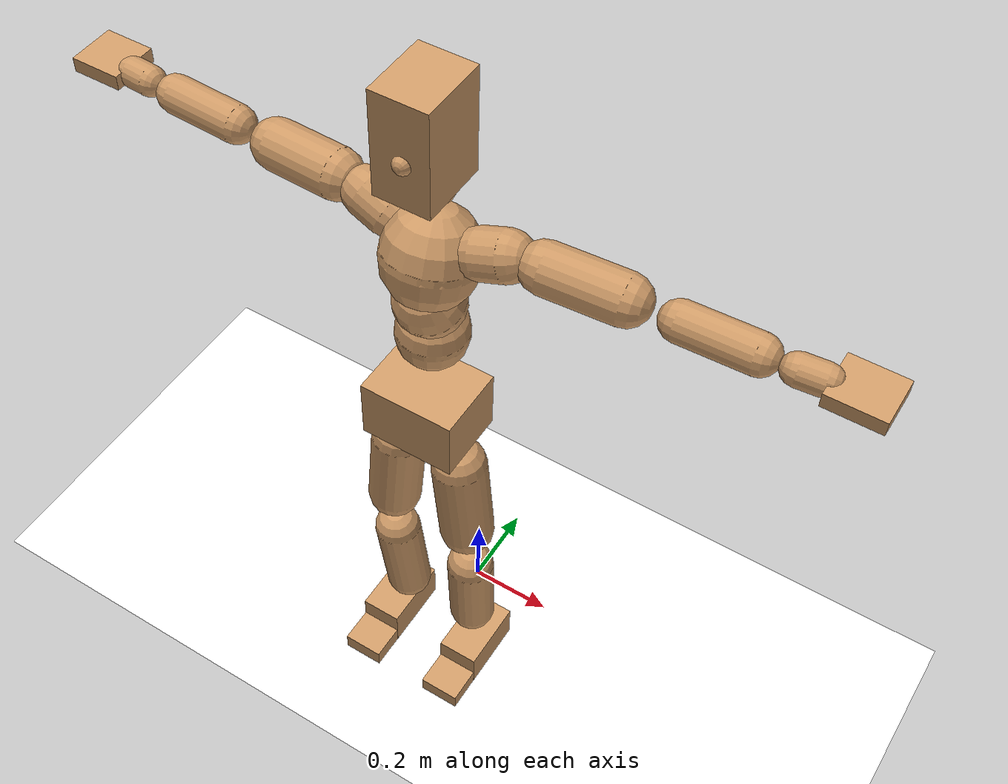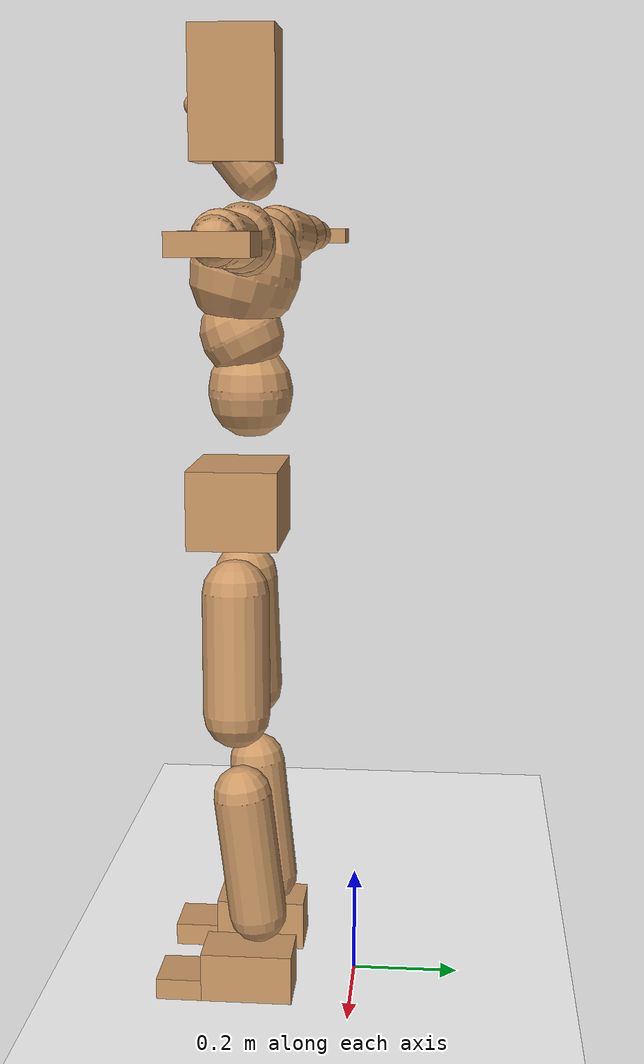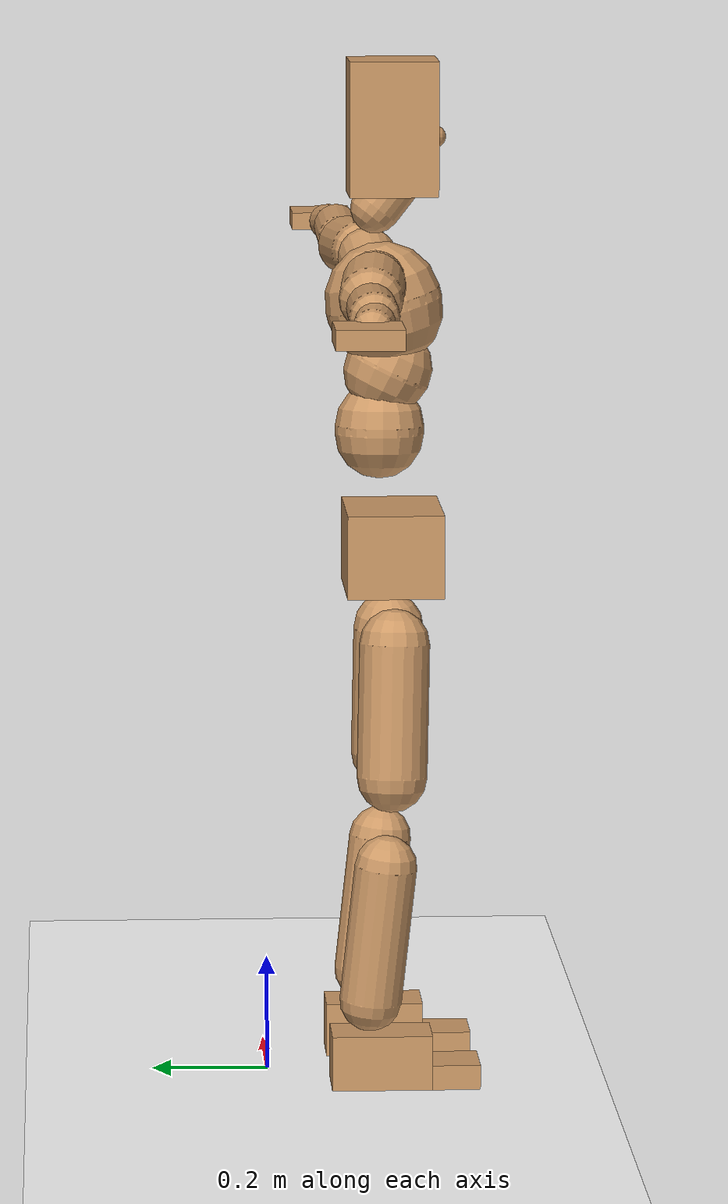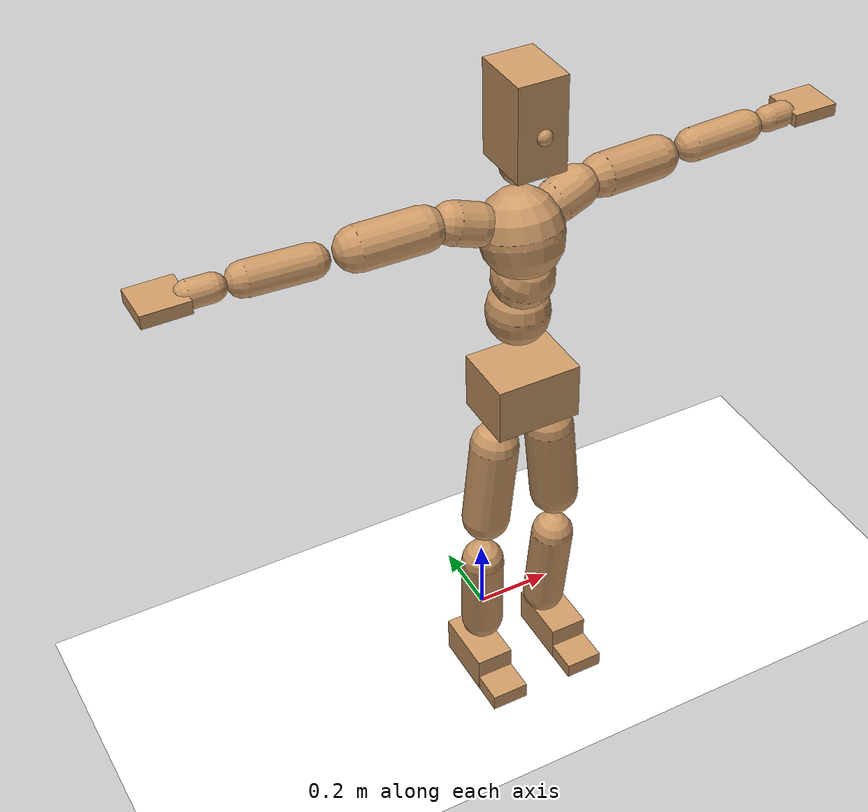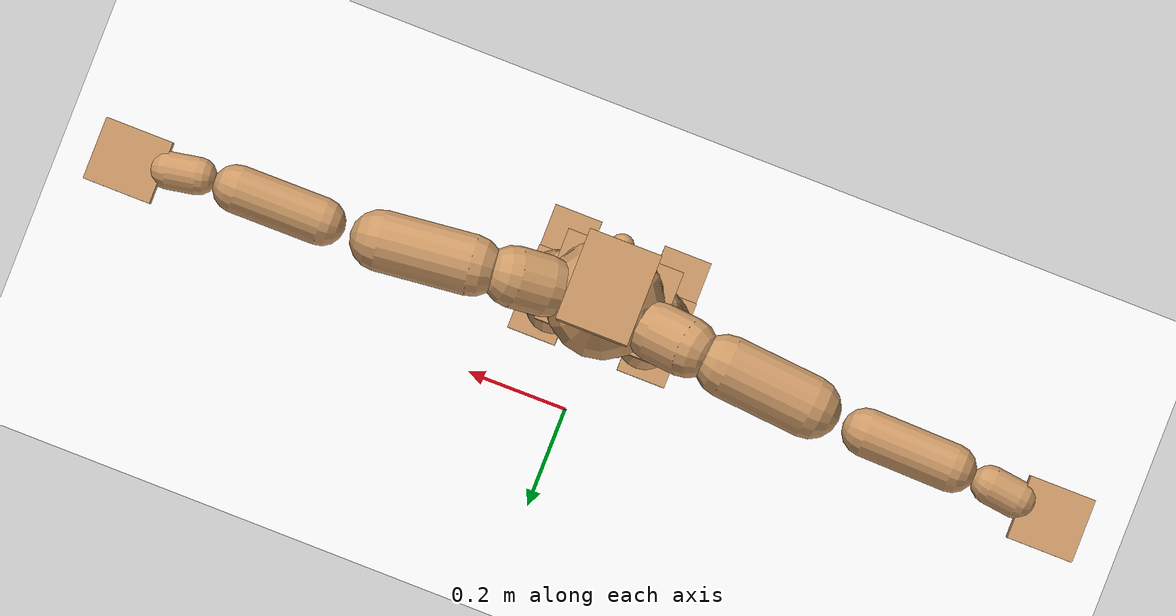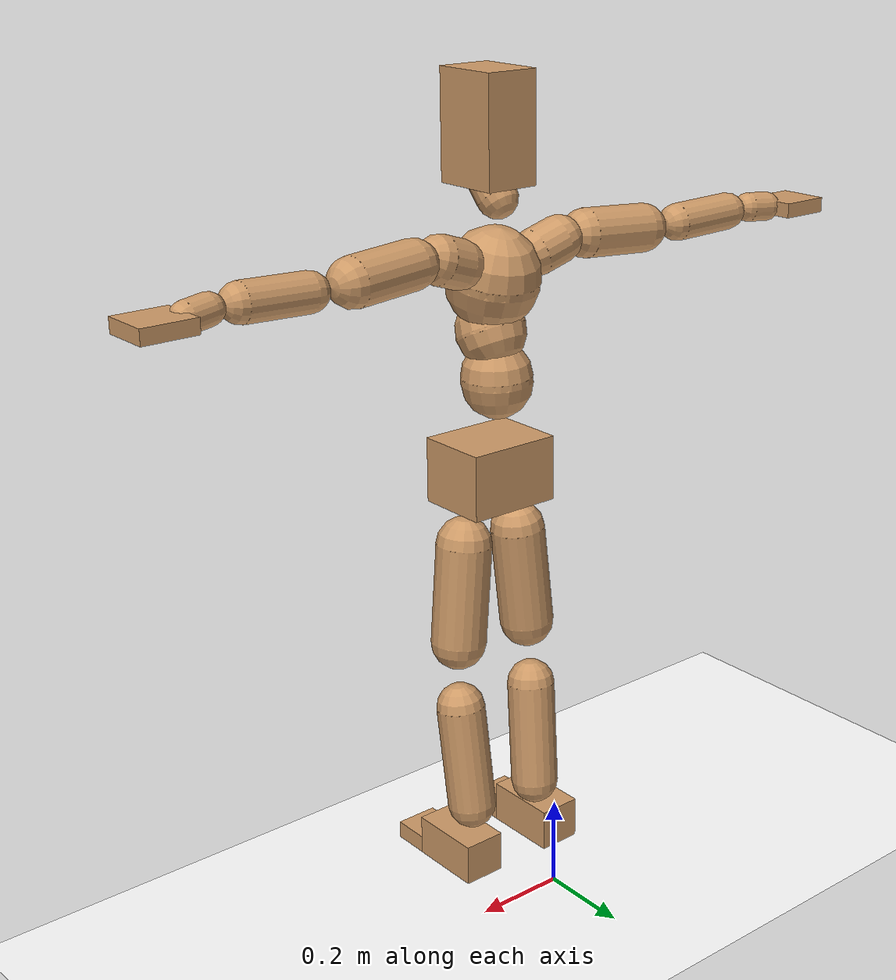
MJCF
<mujoco model="humanoid">
  <option integrator="implicitfast" />

  <visual>
    <global offwidth="1280" offheight="960" />
    <headlight active="1" ambient="0.34 0.34 0.34" diffuse="0.5 0.5 0.5" />
  </visual>

  <default>
    <joint damping="2" stiffness="2" armature="0.01" limited="true" solimplimit="0 .99 .01" />
    <geom condim="1" friction="0.7 0.005 0.0001" solimp=".99 .99 .003" solref="0.015 1" margin="0.001" rgba="0.8 0.6 .4 1" />
    <default class="smplcontact">
      <geom condim="3" friction="1. 0.005 0.0001" solref="0.015 1" solimp="0.98 0.98 0.001" priority="1" />
    </default>
    <default class="stiff_medium">
      <joint stiffness="10" />
    </default>
    <default class="stiff_medium_higher">
      <joint stiffness="50" />
    </default>
    <default class="stiff_high">
      <joint stiffness="100" />
    </default>
  </default>

  <asset>
    <texture type="skybox" builtin="gradient" rgb1="0.99 0.99 0.99" rgb2="0.608 0.828 0.892" width="100" />
    <texture builtin="flat" height="1278" mark="cross" markrgb="1 1 1" name="texgeom" random="0.01" rgb1="0.8 0.6 0.4" rgb2="0.8 0.6 0.4" type="cube" width="127" />
    <texture name="texplane" type="2d" builtin="checker" markrgb="1 1 1" rgb1="0.756 0.772 0.76" rgb2="0.6 0.6 0.6" width="100" height="100" />
    <material name="MatPlane" reflectance="0.5" texture="texplane" texrepeat="1 1" texuniform="true" />
    <material name="geom" texture="texgeom" texuniform="true" />
  </asset>

  <worldbody>
    <light name="tracking_light" pos="0 0 7" dir="0 0 -1" directional="true" cutoff="100" exponent="1" diffuse="1 1 1" specular="0.1 0.1 0.1" mode="trackcom" />
    <camera name="back" pos="0 3 2.4" xyaxes="-1 0 0 0 -1 2" mode="trackcom" />
    <camera name="side" pos="-3 0 2.4" xyaxes="0 -1 0 1 0 2" mode="trackcom" />
    <camera name="front_side" pos="-2.8 -2.8 0.8" xyaxes="0.5 -0.5 0 0.1 0.1 1" mode="trackcom" />
    <geom condim="3" name="floor" pos="0 0 0" rgba="1 1 1 1" size="100 100 .2" type="plane" material="MatPlane" />
    <body name="Pelvis" pos="-0.0018 -0.2233 0.9367" euler="90 0 0">
      <site name="Pelvis" size="0.01" />
      <freejoint name="Pelvis" />
      <geom type="box" pos="-0.0000 -0.0121 -0.0055" size="0.1069 0.0722 0.083" quat="1.0000 0.0000 0.0000 0.0000" density="3165.830099" name="Pelvis" />
      <body name="L_Hip" pos="0.0695 -0.0914 -0.0068">
        <joint name="L_Hip_x" type="hinge" pos="0 0 0" axis="1 0 0" stiffness="10.0" range="-160.0 22.92" class="stiff_medium" damping="15.0" armature="0.01"/>
        <joint name="L_Hip_y" type="hinge" pos="0 0 0" axis="0 1 0" stiffness="10.0" range="-70.0 70.0" class="stiff_medium" damping="10.000000000000007" armature="0.010000000000000016"/>
        <joint name="L_Hip_z" type="hinge" pos="0 0 0" axis="0 0 1" stiffness="10.0" range="-28.65 90.0" class="stiff_medium" damping="9.999999999999996" armature="0.009999999999999995"/>
        <geom type="capsule" density="2040.816327" fromto="0.0069 -0.075 -0.0009 0.0274 -0.3002 -0.0036" size="0.0615" name="L_Hip" />
        <body name="L_Knee" pos="0.0343 -0.3752 -0.0045">
          <joint name="L_Knee_x" type="hinge" pos="0 0 0" axis="1 0 0" range="-5.16 171.89" damping="8.000000000000002" armature="0.010000000000000005" stiffness="2.0"/>
          <joint name="L_Knee_y" type="hinge" pos="0 0 0" axis="0 1 0" range="-4.58 6.88" damping="8.0" armature="0.010000000000000002" stiffness="2.0"/>
          <joint name="L_Knee_z" type="hinge" pos="0 0 0" axis="0 0 1" range="-6.88 4.58" damping="7.999999999999994" armature="0.009999999999999985" stiffness="2.0"/>
          <geom type="capsule" density="1234.567901" fromto="-0.0027 -0.0796 -0.0087 -0.0109 -0.3184 -0.035" size="0.0541" name="L_Knee" />
          <body name="L_Ankle" pos="-0.0136 -0.398 -0.0437">
            <joint name="L_Ankle_x" type="hinge" pos="0 0 0" axis="1 0 0" range="-45.84 45.84" class="stiff_medium" damping="6.000000000000059" armature="0.010000000000000198" stiffness="10.0"/>
            <joint name="L_Ankle_y" type="hinge" pos="0 0 0" axis="0 1 0" range="-74.48 22.92" class="stiff_medium" damping="3.0000000000000013" armature="0.010000000000000009" stiffness="10.0"/>
            <joint name="L_Ankle_z" type="hinge" pos="0 0 0" axis="0 0 1" range="-4.58 4.58" class="stiff_medium" damping="5.999999999999993" armature="0.009999999999999978" stiffness="10.0"/>
            <geom type="box" pos="0.0233 -0.0239 0.0242" size="0.0483 0.0464 0.085" quat="1.0000 0.0000 0.0000 0.0000" density="449.071558" name="L_Ankle" class="smplcontact" />
            <body name="L_Toe" pos="0.0264 -0.0558 0.1193">
              <joint name="L_Toe_x" type="hinge" pos="0 0 0" axis="1 0 0" range="-91.67 22.92" armature="0.009999999999999842" damping="1.9999999999999842" stiffness="2.0"/>
              <joint name="L_Toe_y" type="hinge" pos="0 0 0" axis="0 1 0" range="-4.58 4.58" armature="0.009999999999999976" damping="1.9999999999999976" stiffness="2.0"/>
              <joint name="L_Toe_z" type="hinge" pos="0 0 0" axis="0 0 1" range="-4.58 4.58" armature="0.010000000000000018" damping="2.0000000000000018" stiffness="2.0"/>
              <geom type="box" pos="-0.003 0.0055 0.0248" size="0.0478 0.02 0.0496" quat="1.0000 0.0000 0.0000 0.0000" density="423.206892" name="L_Toe" class="smplcontact" />
            </body>
          </body>
        </body>
      </body>
      <body name="R_Hip" pos="-0.0677 -0.0905 -0.0043">
        <joint name="R_Hip_x" type="hinge" pos="0 0 0" axis="1 0 0" stiffness="10.0" range="-160.0 22.92" class="stiff_medium" damping="15.0" armature="0.01"/>
        <joint name="R_Hip_y" type="hinge" pos="0 0 0" axis="0 1 0" stiffness="10.0" range="-70.0 70.0" class="stiff_medium" damping="10.000000000000007" armature="0.010000000000000016"/>
        <joint name="R_Hip_z" type="hinge" pos="0 0 0" axis="0 0 1" stiffness="10.0" range="-90.0 28.65" class="stiff_medium" damping="9.999999999999996" armature="0.009999999999999995"/>
        <geom type="capsule" density="2040.816327" fromto="-0.0077 -0.0765 -0.0018 -0.0306 -0.3061 -0.0071" size="0.0606" name="R_Hip" />
        <body name="R_Knee" pos="-0.0383 -0.3826 -0.0089">
          <joint name="R_Knee_x" type="hinge" pos="0 0 0" axis="1 0 0" range="-5.16 171.89" damping="8.000000000000002" armature="0.010000000000000005" stiffness="2.0"/>
          <joint name="R_Knee_y" type="hinge" pos="0 0 0" axis="0 1 0" range="-6.88 4.58" damping="8.0" armature="0.010000000000000002" stiffness="2.0"/>
          <joint name="R_Knee_z" type="hinge" pos="0 0 0" axis="0 0 1" range="-4.58 6.88" damping="7.999999999999994" armature="0.009999999999999985" stiffness="2.0"/>
          <geom type="capsule" density="1234.567901" fromto="0.0032 -0.0797 -0.0085 0.0126 -0.3187 -0.0338" size="0.0541" name="R_Knee" />
          <body name="R_Ankle" pos="0.0158 -0.3984 -0.0423">
            <joint name="R_Ankle_x" type="hinge" pos="0 0 0" axis="1 0 0" range="-45.84 45.84" class="stiff_medium" damping="6.000000000000059" armature="0.010000000000000198" stiffness="10.0"/>
            <joint name="R_Ankle_y" type="hinge" pos="0 0 0" axis="0 1 0" range="-22.92 74.48" class="stiff_medium" damping="3.0000000000000013" armature="0.010000000000000009" stiffness="10.0"/>
            <joint name="R_Ankle_z" type="hinge" pos="0 0 0" axis="0 0 1" range="-4.58 4.58" class="stiff_medium" damping="5.999999999999993" armature="0.009999999999999978" stiffness="10.0"/>
            <geom type="box" pos="-0.0212 -0.0174 0.0256" size="0.0483 0.0478 0.0865" quat="1.0000 0.0000 0.0000 0.0000" density="434.700981" name="R_Ankle" class="smplcontact" />
            <body name="R_Toe" pos="-0.0254 -0.0481 0.1233">
              <joint name="R_Toe_x" type="hinge" pos="0 0 0" axis="1 0 0" range="-91.67 22.92" armature="0.009999999999999842" damping="1.9999999999999842" stiffness="2.0"/>
              <joint name="R_Toe_y" type="hinge" pos="0 0 0" axis="0 1 0" range="-4.58 4.58" armature="0.009999999999999976" damping="1.9999999999999976" stiffness="2.0"/>
              <joint name="R_Toe_z" type="hinge" pos="0 0 0" axis="0 0 1" range="-4.58 4.58" armature="0.010000000000000018" damping="2.0000000000000018" stiffness="2.0"/>
              <geom type="box" pos="0.0042 0.0045 0.0227" size="0.0479 0.0216 0.0493" quat="1.0000 0.0000 0.0000 0.0000" density="407.384095" name="R_Toe" class="smplcontact" />
            </body>
          </body>
        </body>
      </body>
      <body name="Torso" pos="-0.00275 0.1199 -0.02937">
        <joint name="Torso_x" type="hinge" pos="0 0 0" axis="1 0 0" range="-25.78 57.3" class="stiff_medium" damping="16.79429853887993" armature="0.011561755674371198" stiffness="10.842200454545454"/>
        <joint name="Torso_y" type="hinge" pos="0 0 0" axis="0 1 0" range="-57.3 57.3" class="stiff_high" damping="20.858875040199514" armature="0.009996275216957545" stiffness="108.81369772727271"/>
        <joint name="Torso_z" type="hinge" pos="0 0 0" axis="0 0 1" range="-34.38 34.38" class="stiff_high" damping="22.060501417946014" armature="0.011062200906818283" stiffness="109.98392790697677"/>
        <geom type="capsule" density="2040.816327" fromto="0.00275 0.06688 0.00055 0.0033 0.08173 0.00066" size="0.0769" name="Torso" />
        <body name="Spine" pos="0.00605 0.14872 0.00121">
          <joint name="Spine_x" type="hinge" pos="0 0 0" axis="1 0 0" stiffness="10.750453181818182" range="-25.78 57.3" class="stiff_medium" damping="16.447848734604506" armature="0.011184302793608762"/>
          <joint name="Spine_y" type="hinge" pos="0 0 0" axis="0 1 0" stiffness="10.78623272727273" range="-57.3 57.3" class="stiff_high" damping="8.306143262255192" armature="0.009994223892500525"/>
          <joint name="Spine_z" type="hinge" pos="0 0 0" axis="0 0 1" stiffness="21.36565045454546" range="-34.38 34.38" class="stiff_high" damping="12.749199089734478" armature="0.010566160192468229"/>
          <geom type="capsule" density="2040.816327" fromto="0.00077 0.02618 0.01254 0.00088 0.03201 0.0154" size="0.0755" name="Spine" />
          <body name="Chest" pos="0.00165 0.05819 0.02794">
            <joint name="Chest_x" type="hinge" pos="0 0 0" axis="1 0 0" stiffness="10.552468409090906" range="-25.78 57.3" class="stiff_medium" damping="16.135608239637694" armature="0.010965643010175986"/>
            <joint name="Chest_y" type="hinge" pos="0 0 0" axis="0 1 0" stiffness="10.31391181818182" range="-57.3 57.3" class="stiff_high" damping="8.128466987862454" armature="0.01000953504861862"/>
            <joint name="Chest_z" type="hinge" pos="0 0 0" axis="0 0 1" stiffness="21.177770909090903" range="-34.38 34.38" class="stiff_high" damping="12.572564837231004" armature="0.010366568589570522"/>
            <geom type="capsule" density="2040.816327" fromto="-0.00099 0.07502 -0.01903 -0.0011 0.09163 -0.02332" size="0.1002" name="Chest" />
            <body name="Neck" pos="-0.00308 0.23529 -0.04719">
              <joint name="Neck_x" type="hinge" pos="0 0 0" axis="1 0 0" range="-28.65 57.3" class="stiff_medium_higher" damping="10.072954704336867" armature="0.0100292723934457" stiffness="50.58413636363637"/>
              <joint name="Neck_y" type="hinge" pos="0 0 0" axis="0 1 0" range="-40.11 40.11" class="stiff_medium_higher" damping="10.085745635021159" armature="0.01008025244535029" stiffness="50.456209090909084"/>
              <joint name="Neck_z" type="hinge" pos="0 0 0" axis="0 0 1" range="-40.11 40.11" class="stiff_medium_higher" damping="10.032766168868276" armature="0.010020465619005468" stiffness="50.22540909090909"/>
              <geom type="capsule" density="1000" fromto="0.0011 0.0143 0.01133 0.00451 0.0572 0.04521" size="0.0436" name="Neck" />
              <body name="Head" pos="0.0052 0.065 0.0513">
                <joint name="Head_x" type="hinge" pos="0 0 0" axis="1 0 0" range="-28.65 57.3" class="stiff_medium_higher" damping="1.9999999999999958" armature="0.009999999999999959" stiffness="50.0"/>
                <joint name="Head_y" type="hinge" pos="0 0 0" axis="0 1 0" range="-40.11 40.11" class="stiff_medium_higher" damping="2.0" armature="0.01" stiffness="50.0"/>
                <joint name="Head_z" type="hinge" pos="0 0 0" axis="0 0 1" range="-40.11 40.11" class="stiff_medium_higher" damping="1.9999999999999953" armature="0.009999999999999955" stiffness="50.0"/>
                <geom type="box" pos="-0.0042 0.0876 -0.0116" size="0.0606 0.1154 0.076" quat="1.0000 0.0000 0.0000 0.0000" density="1018.069894" name="Head" />
                <geom type="capsule" name="nose" size="0.02 0.01" pos="0 0.07 0.05" quat="1 0 0 0" mass="0" contype="0" conaffinity="0" />
              </body>
            </body>
            <body name="L_Thorax" pos="0.0788 0.1217 -0.0341">
              <joint name="L_Thorax_x" type="hinge" pos="0 0 0" axis="1 0 0" range="-10.89 4.58" class="stiff_medium_higher" damping="19.999999999999915" armature="0.009999999999999915" stiffness="50.0"/>
              <joint name="L_Thorax_y" type="hinge" pos="0 0 0" axis="0 1 0" range="-28.65 17.19" class="stiff_medium_higher" damping="20.000000000000004" armature="0.010000000000000005" stiffness="50.0"/>
              <joint name="L_Thorax_z" type="hinge" pos="0 0 0" axis="0 0 1" range="-31.51 40.11" class="stiff_medium_higher" damping="20.0" armature="0.010000000000000002" stiffness="50.0"/>
              <geom type="capsule" density="1000" fromto="0.0182 0.0061 -0.0018 0.0728 0.0244 -0.0071" size="0.0521" name="L_Thorax" />
              <body name="L_Shoulder" pos="0.091 0.0305 -0.0089">
                <joint name="L_Shoulder_x" type="hinge" pos="0 0 0" axis="1 0 0" range="-97.4 97.4" class="stiff_medium" damping="6.000000000000007" armature="0.010000000000000024" stiffness="10.0"/>
                <joint name="L_Shoulder_y" type="hinge" pos="0 0 0" axis="0 1 0" range="-108.86 80.21" class="stiff_medium" damping="6.0" armature="0.010000000000000002" stiffness="10.0"/>
                <joint name="L_Shoulder_z" type="hinge" pos="0 0 0" axis="0 0 1" range="-97.4 85.94" class="stiff_medium" damping="6.000000000000003" armature="0.010000000000000009" stiffness="10.0"/>
                <geom type="capsule" density="1000" fromto="0.0519 -0.0026 -0.0055 0.2077 -0.0102 -0.022" size="0.0517" name="L_Shoulder" />
                <body name="L_Elbow" pos="0.2596 -0.0128 -0.0275">
                  <joint name="L_Elbow_x" type="hinge" pos="0 0 0" axis="1 0 0" range="-17.19 4.58" damping="4.999999999999832" armature="0.009999999999999329" stiffness="2.0"/>
                  <joint name="L_Elbow_y" type="hinge" pos="0 0 0" axis="0 1 0" range="-180.0 17.19" damping="5.000000000000004" armature="0.010000000000000018" stiffness="2.0"/>
                  <joint name="L_Elbow_z" type="hinge" pos="0 0 0" axis="0 0 1" range="-100.84 4.58" damping="5.0" armature="0.010000000000000002" stiffness="2.0"/>
                  <geom type="capsule" density="1000" fromto="0.0498 0.0018 -0.0002 0.1994 0.0072 -0.0009" size="0.0405" name="L_Elbow" />
                  <body name="L_Wrist" pos="0.2492 0.009 -0.0012">
                    <joint name="L_Wrist_x" type="hinge" pos="0 0 0" axis="1 0 0" range="-180.0 22.92" armature="0.009999999999999194" damping="1.9999999999999194" stiffness="2.0"/>
                    <joint name="L_Wrist_y" type="hinge" pos="0 0 0" axis="0 1 0" range="-17.19 17.19" armature="0.00999999999999998" damping="1.9999999999999978" stiffness="2.0"/>
                    <joint name="L_Wrist_z" type="hinge" pos="0 0 0" axis="0 0 1" range="-22.92 22.92" armature="0.009999999999999894" damping="1.9999999999999893" stiffness="2.0"/>
                    <geom type="capsule" density="1000" fromto="0.0168 -0.0016 -0.003 0.0672 -0.0065 -0.012" size="0.0318" name="L_Wrist" class="smplcontact" />
                    <body name="L_Hand" pos="0.084 -0.0082 -0.0149">
                      <joint name="L_Hand_x" type="hinge" pos="0 0 0" axis="1 0 0" range="-17.19 17.19" armature="0.009999999999999773" damping="1.9999999999999774" stiffness="2.0"/>
                      <joint name="L_Hand_y" type="hinge" pos="0 0 0" axis="0 1 0" range="-51.57 51.57" armature="0.010000000000000144" damping="2.000000000000014" stiffness="2.0"/>
                      <joint name="L_Hand_z" type="hinge" pos="0 0 0" axis="0 0 1" range="-91.67 91.67" armature="0.010000000000000191" damping="2.000000000000019" stiffness="2.0"/>
                      <geom type="box" pos="0.0493 0.001 -0.0058" size="0.0585 0.0158 0.0538" quat="1.0000 0.0000 0.0000 0.0000" density="400.552564" name="L_Hand" class="smplcontact" />
                    </body>
                  </body>
                </body>
              </body>
            </body>
            <body name="R_Thorax" pos="-0.0818 0.1188 -0.0386">
              <joint name="R_Thorax_x" type="hinge" pos="0 0 0" axis="1 0 0" range="-10.89 4.58" class="stiff_medium_higher" damping="19.999999999999915" armature="0.009999999999999915" stiffness="50.0"/>
              <joint name="R_Thorax_y" type="hinge" pos="0 0 0" axis="0 1 0" range="-17.19 28.65" class="stiff_medium_higher" damping="20.000000000000004" armature="0.010000000000000005" stiffness="50.0"/>
              <joint name="R_Thorax_z" type="hinge" pos="0 0 0" axis="0 0 1" range="-40.11 31.51" class="stiff_medium_higher" damping="20.0" armature="0.010000000000000002" stiffness="50.0"/>
              <geom type="capsule" density="1000" fromto="-0.0192 0.0065 -0.0018 -0.0768 0.026 -0.0073" size="0.0511" name="R_Thorax" />
              <body name="R_Shoulder" pos="-0.096 0.0326 -0.0091">
                <joint name="R_Shoulder_x" type="hinge" pos="0 0 0" axis="1 0 0" range="-97.4 97.4" class="stiff_medium" damping="6.000000000000007" armature="0.010000000000000024" stiffness="10.0"/>
                <joint name="R_Shoulder_y" type="hinge" pos="0 0 0" axis="0 1 0" range="-80.21 108.86" class="stiff_medium" damping="6.0" armature="0.010000000000000002" stiffness="10.0"/>
                <joint name="R_Shoulder_z" type="hinge" pos="0 0 0" axis="0 0 1" range="-85.94 97.4" class="stiff_medium" damping="6.000000000000003" armature="0.010000000000000009" stiffness="10.0"/>
                <geom type="capsule" density="1000" fromto="-0.0507 -0.0027 -0.0043 -0.203 -0.0107 -0.0171" size="0.0531" name="R_Shoulder" />
                <body name="R_Elbow" pos="-0.2537 -0.0133 -0.0214">
                  <joint name="R_Elbow_x" type="hinge" pos="0 0 0" axis="1 0 0" range="-17.19 4.58" damping="4.999999999999832" armature="0.009999999999999329" stiffness="2.0"/>
                  <joint name="R_Elbow_y" type="hinge" pos="0 0 0" axis="0 1 0" range="-17.19 180.0" damping="5.000000000000004" armature="0.010000000000000018" stiffness="2.0"/>
                  <joint name="R_Elbow_z" type="hinge" pos="0 0 0" axis="0 0 1" range="-4.58 100.84" damping="5.0" armature="0.010000000000000002" stiffness="2.0"/>
                  <geom type="capsule" density="1000" fromto="-0.0511 0.0016 -0.0011 -0.2042 0.0062 -0.0044" size="0.0408" name="R_Elbow" />
                  <body name="R_Wrist" pos="-0.2553 0.0078 -0.0056">
                    <joint name="R_Wrist_x" type="hinge" pos="0 0 0" axis="1 0 0" range="-180.0 22.92" armature="0.009999999999999194" damping="1.9999999999999194" stiffness="2.0"/>
                    <joint name="R_Wrist_y" type="hinge" pos="0 0 0" axis="0 1 0" range="-17.19 17.19" armature="0.00999999999999998" damping="1.9999999999999978" stiffness="2.0"/>
                    <joint name="R_Wrist_z" type="hinge" pos="0 0 0" axis="0 0 1" range="-22.92 22.92" armature="0.009999999999999894" damping="1.9999999999999893" stiffness="2.0"/>
                    <geom type="capsule" density="1000" fromto="-0.0169 -0.0012 -0.0021 -0.0677 -0.0049 -0.0083" size="0.0326" name="R_Wrist" class="smplcontact" />
                    <body name="R_Hand" pos="-0.0846 -0.0061 -0.0103">
                      <joint name="R_Hand_x" type="hinge" pos="0 0 0" axis="1 0 0" range="-17.19 17.19" armature="0.009999999999999773" damping="1.9999999999999774" stiffness="2.0"/>
                      <joint name="R_Hand_y" type="hinge" pos="0 0 0" axis="0 1 0" range="-51.57 51.57" armature="0.010000000000000144" damping="2.000000000000014" stiffness="2.0"/>
                      <joint name="R_Hand_z" type="hinge" pos="0 0 0" axis="0 0 1" range="-91.67 91.67" armature="0.010000000000000191" damping="2.000000000000019" stiffness="2.0"/>
                      <geom type="box" pos="-0.0462 -0.0009 -0.0079" size="0.0569 0.0164 0.0546" quat="1.0000 0.0000 0.0000 0.0000" density="403.679611" name="R_Hand" class="smplcontact" />
                    </body>
                  </body>
                </body>
              </body>
            </body>
          </body>
        </body>
      </body>
    </body>
  </worldbody>
  <actuator>
    <general name="L_Hip_x" joint="L_Hip_x" biastype="affine" gainprm="287.33006409732246" biasprm="-215.3247604770444 -180.0 -2.0" ctrllimited="true" ctrlrange="-1 1" forcerange="-360.0 360.0" />
    <general name="L_Hip_y" joint="L_Hip_y" biastype="affine" gainprm="219.9114857512855" biasprm="0.0 -180.0 -2.0000000000000013" ctrllimited="true" ctrlrange="-1 1" forcerange="-360.0 360.0" />
    <general name="L_Hip_z" joint="L_Hip_z" biastype="affine" gainprm="186.3749841742145" biasprm="96.3683546488669 -180.0 -1.9999999999999993" ctrllimited="true" ctrlrange="-1 1" forcerange="-360.0 360.0" />
    <general name="L_Knee_x" joint="L_Knee_x" biastype="affine" gainprm="278.10948965903646" biasprm="261.8988715665131 -180.0 -2.0000000000000004" ctrllimited="true" ctrlrange="-1 1" forcerange="-360.0 360.0" />
    <general name="L_Knee_y" joint="L_Knee_y" biastype="affine" gainprm="18.001325905069514" biasprm="3.612831551628262 -180.0 -2.0" ctrllimited="true" ctrlrange="-1 1" forcerange="-360.0 360.0" />
    <general name="L_Knee_z" joint="L_Knee_z" biastype="affine" gainprm="18.001325905069514" biasprm="-3.612831551628262 -180.0 -1.9999999999999984" ctrllimited="true" ctrlrange="-1 1" forcerange="-360.0 360.0" />
    <general name="L_Ankle_x" joint="L_Ankle_x" biastype="affine" gainprm="72.00530362027807" biasprm="0.0 -90.0 -2.0000000000000195" ctrllimited="true" ctrlrange="-1 1" forcerange="-180.0 180.0" />
    <general name="L_Ankle_y" joint="L_Ankle_y" biastype="affine" gainprm="76.49778111491148" biasprm="-40.49512930477244 -90.0 -2.000000000000001" ctrllimited="true" ctrlrange="-1 1" forcerange="-180.0 180.0" />
    <general name="L_Ankle_z" joint="L_Ankle_z" biastype="affine" gainprm="7.1942471767206255" biasprm="0.0 -90.0 -1.9999999999999976" ctrllimited="true" ctrlrange="-1 1" forcerange="-180.0 180.0" />
    <general name="L_Toe_x" joint="L_Toe_x" biastype="affine" gainprm="71.99902043497087" biasprm="-43.19689898685965 -72.0 -0.7999999999999937" ctrllimited="true" ctrlrange="-1 1" forcerange="-144.0 144.0" />
    <general name="L_Toe_y" joint="L_Toe_y" biastype="affine" gainprm="5.755397741376501" biasprm="0.0 -72.0 -0.799999999999999" ctrllimited="true" ctrlrange="-1 1" forcerange="-144.0 144.0" />
    <general name="L_Toe_z" joint="L_Toe_z" biastype="affine" gainprm="5.755397741376501" biasprm="0.0 -72.0 -0.8000000000000007" ctrllimited="true" ctrlrange="-1 1" forcerange="-144.0 144.0" />
    <general name="R_Hip_x" joint="R_Hip_x" biastype="affine" gainprm="287.33006409732246" biasprm="-215.3247604770444 -180.0 -2.0" ctrllimited="true" ctrlrange="-1 1" forcerange="-360.0 360.0" />
    <general name="R_Hip_y" joint="R_Hip_y" biastype="affine" gainprm="219.9114857512855" biasprm="0.0 -180.0 -2.0000000000000013" ctrllimited="true" ctrlrange="-1 1" forcerange="-360.0 360.0" />
    <general name="R_Hip_z" joint="R_Hip_z" biastype="affine" gainprm="186.3749841742145" biasprm="-96.3683546488669 -180.0 -1.9999999999999993" ctrllimited="true" ctrlrange="-1 1" forcerange="-360.0 360.0" />
    <general name="R_Knee_x" joint="R_Knee_x" biastype="affine" gainprm="278.10948965903646" biasprm="261.8988715665131 -180.0 -2.0000000000000004" ctrllimited="true" ctrlrange="-1 1" forcerange="-360.0 360.0" />
    <general name="R_Knee_y" joint="R_Knee_y" biastype="affine" gainprm="18.001325905069514" biasprm="-3.612831551628262 -180.0 -2.0" ctrllimited="true" ctrlrange="-1 1" forcerange="-360.0 360.0" />
    <general name="R_Knee_z" joint="R_Knee_z" biastype="affine" gainprm="18.001325905069514" biasprm="3.612831551628262 -180.0 -1.9999999999999984" ctrllimited="true" ctrlrange="-1 1" forcerange="-360.0 360.0" />
    <general name="R_Ankle_x" joint="R_Ankle_x" biastype="affine" gainprm="72.00530362027807" biasprm="0.0 -90.0 -2.0000000000000195" ctrllimited="true" ctrlrange="-1 1" forcerange="-180.0 180.0" />
    <general name="R_Ankle_y" joint="R_Ankle_y" biastype="affine" gainprm="76.49778111491148" biasprm="40.49512930477244 -90.0 -2.000000000000001" ctrllimited="true" ctrlrange="-1 1" forcerange="-180.0 180.0" />
    <general name="R_Ankle_z" joint="R_Ankle_z" biastype="affine" gainprm="7.1942471767206255" biasprm="0.0 -90.0 -1.9999999999999976" ctrllimited="true" ctrlrange="-1 1" forcerange="-180.0 180.0" />
    <general name="R_Toe_x" joint="R_Toe_x" biastype="affine" gainprm="71.99902043497087" biasprm="-43.19689898685965 -72.0 -0.7999999999999937" ctrllimited="true" ctrlrange="-1 1" forcerange="-144.0 144.0" />
    <general name="R_Toe_y" joint="R_Toe_y" biastype="affine" gainprm="5.755397741376501" biasprm="0.0 -72.0 -0.799999999999999" ctrllimited="true" ctrlrange="-1 1" forcerange="-144.0 144.0" />
    <general name="R_Toe_z" joint="R_Toe_z" biastype="affine" gainprm="5.755397741376501" biasprm="0.0 -72.0 -0.8000000000000007" ctrllimited="true" ctrlrange="-1 1" forcerange="-144.0 144.0" />
    <general name="Torso_x" joint="Torso_x" biastype="affine" gainprm="188.65683052092112" biasprm="71.57514802623294 -260.2128109090909 -4.478479610367981" ctrllimited="true" ctrlrange="-1 1" forcerange="-390.3192163636364 390.3192163636364" />
    <general name="Torso_y" joint="Torso_y" biastype="affine" gainprm="261.1721114299144" biasprm="0.0 -261.15287454545455 -4.171775008039903" ctrllimited="true" ctrlrange="-1 1" forcerange="-391.72931181818177 391.72931181818177" />
    <general name="Torso_z" joint="Torso_z" biastype="affine" gainprm="158.38852244585274" biasprm="0.0 -263.96142697674424 -4.4121002835892025" ctrllimited="true" ctrlrange="-1 1" forcerange="-395.9421404651164 395.9421404651164" />
    <general name="Spine_x" joint="Spine_x" biastype="affine" gainprm="187.06040645975102" biasprm="70.96947534438314 -258.0108763636364 -4.3860929958945345" ctrllimited="true" ctrlrange="-1 1" forcerange="-387.0163145454546 387.0163145454546" />
    <general name="Spine_y" joint="Spine_y" biastype="affine" gainprm="258.8886541487509" biasprm="0.0 -258.8695854545455 -4.153071631127596" ctrllimited="true" ctrlrange="-1 1" forcerange="-388.3043781818182 388.3043781818182" />
    <general name="Spine_z" joint="Spine_z" biastype="affine" gainprm="153.8440148024278" biasprm="0.0 -256.3878054545455 -4.249733029911493" ctrllimited="true" ctrlrange="-1 1" forcerange="-384.58170818181827 384.58170818181827" />
    <general name="Chest_x" joint="Chest_x" biastype="affine" gainprm="183.61542498475222" biasprm="69.66247226190887 -253.25924181818178 -4.302828863903385" ctrllimited="true" ctrlrange="-1 1" forcerange="-379.8888627272727 379.8888627272727" />
    <general name="Chest_y" joint="Chest_y" biastype="affine" gainprm="247.55211732698535" biasprm="0.0 -247.53388363636367 -4.064233493931227" ctrllimited="true" ctrlrange="-1 1" forcerange="-371.30082545454553 371.30082545454553" />
    <general name="Chest_z" joint="Chest_z" biastype="affine" gainprm="152.49118243097828" biasprm="0.0 -254.13325090909083 -4.190854945743668" ctrllimited="true" ctrlrange="-1 1" forcerange="-381.19987636363624 381.19987636363624" />
    <general name="Neck_x" joint="Neck_x" biastype="affine" gainprm="27.317445729248885" biasprm="9.105815243082962 -36.420578181818186 -0.8058363763469494" ctrllimited="true" ctrlrange="-1 1" forcerange="-72.84115636363637 72.84115636363637" />
    <general name="Neck_y" joint="Neck_y" biastype="affine" gainprm="25.431802585834" biasprm="0.0 -36.32847054545454 -0.8068596508016928" ctrllimited="true" ctrlrange="-1 1" forcerange="-72.65694109090909 72.65694109090909" />
    <general name="Neck_z" joint="Neck_z" biastype="affine" gainprm="25.31547081730508" biasprm="0.0 -36.16229454545454 -0.8026212935094622" ctrllimited="true" ctrlrange="-1 1" forcerange="-72.32458909090909 72.32458909090909" />
    <general name="Head_x" joint="Head_x" biastype="affine" gainprm="18.001325905069514" biasprm="6.000441968356505 -24.0 -0.7999999999999984" ctrllimited="true" ctrlrange="-1 1" forcerange="-48.0 48.0" />
    <general name="Head_y" joint="Head_y" biastype="affine" gainprm="16.801237511398213" biasprm="0.0 -24.0 -0.8" ctrllimited="true" ctrlrange="-1 1" forcerange="-48.0 48.0" />
    <general name="Head_z" joint="Head_z" biastype="affine" gainprm="16.801237511398213" biasprm="0.0 -24.0 -0.7999999999999982" ctrllimited="true" ctrlrange="-1 1" forcerange="-48.0 48.0" />
    <general name="L_Thorax_x" joint="L_Thorax_x" biastype="affine" gainprm="16.200146117011364" biasprm="-6.6078165480505335 -120.0 -1.5999999999999934" ctrllimited="true" ctrlrange="-1 1" forcerange="-240.0 240.0" />
    <general name="L_Thorax_y" joint="L_Thorax_y" biastype="affine" gainprm="48.00353574685204" biasprm="-12.00088393671301 -120.0 -1.6000000000000005" ctrllimited="true" ctrlrange="-1 1" forcerange="-240.0 240.0" />
    <general name="L_Thorax_z" joint="L_Thorax_z" biastype="affine" gainprm="75.00028861670033" biasprm="9.00589894029074 -120.0 -1.6" ctrllimited="true" ctrlrange="-1 1" forcerange="-240.0 240.0" />
    <general name="L_Shoulder_x" joint="L_Shoulder_x" biastype="affine" gainprm="81.5976331892389" biasprm="0.0 -48.0 -1.6000000000000019" ctrllimited="true" ctrlrange="-1 1" forcerange="-96.0 96.0" />
    <general name="L_Shoulder_y" joint="L_Shoulder_y" biastype="affine" gainprm="79.19745640189629" biasprm="-12.00088393671301 -48.0 -1.6" ctrllimited="true" ctrlrange="-1 1" forcerange="-96.0 96.0" />
    <general name="L_Shoulder_z" joint="L_Shoulder_z" biastype="affine" gainprm="76.79727961455369" biasprm="-4.800353574685214 -48.0 -1.6000000000000008" ctrllimited="true" ctrlrange="-1 1" forcerange="-96.0 96.0" />
    <general name="L_Elbow_x" joint="L_Elbow_x" biastype="affine" gainprm="13.67849441372996" biasprm="-7.923096672353461 -72.0 -0.7999999999999732" ctrllimited="true" ctrlrange="-1 1" forcerange="-144.0 144.0" />
    <general name="L_Elbow_y" joint="L_Elbow_y" biastype="affine" gainprm="123.89813107227425" biasprm="-102.29653998619085 -72.0 -0.8000000000000007" ctrllimited="true" ctrlrange="-1 1" forcerange="-144.0 144.0" />
    <general name="L_Elbow_z" joint="L_Elbow_z" biastype="affine" gainprm="66.23733950828719" biasprm="-60.4819417669107 -72.0 -0.8" ctrllimited="true" ctrlrange="-1 1" forcerange="-144.0 144.0" />
    <general name="L_Wrist_x" joint="L_Wrist_x" biastype="affine" gainprm="21.24973270888136" biasprm="-16.449379134196157 -12.0 -0.7999999999999678" ctrllimited="true" ctrlrange="-1 1" forcerange="-24.0 24.0" />
    <general name="L_Wrist_y" joint="L_Wrist_y" biastype="affine" gainprm="3.6002651810139037" biasprm="0.0 -12.0 -0.7999999999999992" ctrllimited="true" ctrlrange="-1 1" forcerange="-24.0 24.0" />
    <general name="L_Wrist_z" joint="L_Wrist_z" biastype="affine" gainprm="4.800353574685205" biasprm="0.0 -12.0 -0.7999999999999958" ctrllimited="true" ctrlrange="-1 1" forcerange="-24.0 24.0" />
    <general name="L_Hand_x" joint="L_Hand_x" biastype="affine" gainprm="3.6002651810139037" biasprm="0.0 -12.0 -0.7999999999999909" ctrllimited="true" ctrlrange="-1 1" forcerange="-24.0 24.0" />
    <general name="L_Hand_y" joint="L_Hand_y" biastype="affine" gainprm="10.800795543041708" biasprm="0.0 -12.0 -0.8000000000000057" ctrllimited="true" ctrlrange="-1 1" forcerange="-24.0 24.0" />
    <general name="L_Hand_z" joint="L_Hand_z" biastype="affine" gainprm="19.199319903638422" biasprm="0.0 -12.0 -0.8000000000000077" ctrllimited="true" ctrlrange="-1 1" forcerange="-24.0 24.0" />
    <general name="R_Thorax_x" joint="R_Thorax_x" biastype="affine" gainprm="16.200146117011364" biasprm="-6.6078165480505335 -120.0 -1.5999999999999934" ctrllimited="true" ctrlrange="-1 1" forcerange="-240.0 240.0" />
    <general name="R_Thorax_y" joint="R_Thorax_y" biastype="affine" gainprm="48.00353574685204" biasprm="12.000883936713002 -120.0 -1.6000000000000005" ctrllimited="true" ctrlrange="-1 1" forcerange="-240.0 240.0" />
    <general name="R_Thorax_z" joint="R_Thorax_z" biastype="affine" gainprm="75.00028861670033" biasprm="-9.00589894029074 -120.0 -1.6" ctrllimited="true" ctrlrange="-1 1" forcerange="-240.0 240.0" />
    <general name="R_Shoulder_x" joint="R_Shoulder_x" biastype="affine" gainprm="81.5976331892389" biasprm="0.0 -48.0 -1.6000000000000019" ctrllimited="true" ctrlrange="-1 1" forcerange="-96.0 96.0" />
    <general name="R_Shoulder_y" joint="R_Shoulder_y" biastype="affine" gainprm="79.19745640189629" biasprm="12.00088393671301 -48.0 -1.6" ctrllimited="true" ctrlrange="-1 1" forcerange="-96.0 96.0" />
    <general name="R_Shoulder_z" joint="R_Shoulder_z" biastype="affine" gainprm="76.79727961455369" biasprm="4.800353574685204 -48.0 -1.6000000000000008" ctrllimited="true" ctrlrange="-1 1" forcerange="-96.0 96.0" />
    <general name="R_Elbow_x" joint="R_Elbow_x" biastype="affine" gainprm="13.67849441372996" biasprm="-7.923096672353461 -72.0 -0.7999999999999732" ctrllimited="true" ctrlrange="-1 1" forcerange="-144.0 144.0" />
    <general name="R_Elbow_y" joint="R_Elbow_y" biastype="affine" gainprm="123.89813107227425" biasprm="102.29653998619085 -72.0 -0.8000000000000007" ctrllimited="true" ctrlrange="-1 1" forcerange="-144.0 144.0" />
    <general name="R_Elbow_z" joint="R_Elbow_z" biastype="affine" gainprm="66.23733950828719" biasprm="60.481941766910694 -72.0 -0.8" ctrllimited="true" ctrlrange="-1 1" forcerange="-144.0 144.0" />
    <general name="R_Wrist_x" joint="R_Wrist_x" biastype="affine" gainprm="21.24973270888136" biasprm="-16.449379134196157 -12.0 -0.7999999999999678" ctrllimited="true" ctrlrange="-1 1" forcerange="-24.0 24.0" />
    <general name="R_Wrist_y" joint="R_Wrist_y" biastype="affine" gainprm="3.6002651810139037" biasprm="0.0 -12.0 -0.7999999999999992" ctrllimited="true" ctrlrange="-1 1" forcerange="-24.0 24.0" />
    <general name="R_Wrist_z" joint="R_Wrist_z" biastype="affine" gainprm="4.800353574685205" biasprm="0.0 -12.0 -0.7999999999999958" ctrllimited="true" ctrlrange="-1 1" forcerange="-24.0 24.0" />
    <general name="R_Hand_x" joint="R_Hand_x" biastype="affine" gainprm="3.6002651810139037" biasprm="0.0 -12.0 -0.7999999999999909" ctrllimited="true" ctrlrange="-1 1" forcerange="-24.0 24.0" />
    <general name="R_Hand_y" joint="R_Hand_y" biastype="affine" gainprm="10.800795543041708" biasprm="0.0 -12.0 -0.8000000000000057" ctrllimited="true" ctrlrange="-1 1" forcerange="-24.0 24.0" />
    <general name="R_Hand_z" joint="R_Hand_z" biastype="affine" gainprm="19.199319903638422" biasprm="0.0 -12.0 -0.8000000000000077" ctrllimited="true" ctrlrange="-1 1" forcerange="-24.0 24.0" />
  </actuator>
  <contact>
    <exclude body1="Torso" body2="Chest" />
    <exclude body1="Head" body2="Chest" />
    <exclude body1="R_Knee" body2="R_Toe" />
    <exclude body1="R_Knee" body2="L_Ankle" />
    <exclude body1="R_Knee" body2="L_Toe" />
    <exclude body1="L_Knee" body2="L_Toe" />
    <exclude body1="L_Knee" body2="R_Ankle" />
    <exclude body1="L_Knee" body2="R_Toe" />
    <exclude body1="L_Shoulder" body2="Chest" />
    <exclude body1="R_Shoulder" body2="Chest" />
  </contact>
  <sensor>
    <framelinvel name="sensor_Pelvis_framelinvel" objtype="xbody" objname="Pelvis" />
    <framelinvel name="sensor_L_Hip_framelinvel" objtype="xbody" objname="L_Hip" />
    <framelinvel name="sensor_L_Knee_framelinvel" objtype="xbody" objname="L_Knee" />
    <framelinvel name="sensor_L_Ankle_framelinvel" objtype="xbody" objname="L_Ankle" />
    <framelinvel name="sensor_L_Toe_framelinvel" objtype="xbody" objname="L_Toe" />
    <framelinvel name="sensor_R_Hip_framelinvel" objtype="xbody" objname="R_Hip" />
    <framelinvel name="sensor_R_Knee_framelinvel" objtype="xbody" objname="R_Knee" />
    <framelinvel name="sensor_R_Ankle_framelinvel" objtype="xbody" objname="R_Ankle" />
    <framelinvel name="sensor_R_Toe_framelinvel" objtype="xbody" objname="R_Toe" />
    <framelinvel name="sensor_Torso_framelinvel" objtype="xbody" objname="Torso" />
    <framelinvel name="sensor_Spine_framelinvel" objtype="xbody" objname="Spine" />
    <framelinvel name="sensor_Chest_framelinvel" objtype="xbody" objname="Chest" />
    <framelinvel name="sensor_Neck_framelinvel" objtype="xbody" objname="Neck" />
    <framelinvel name="sensor_Head_framelinvel" objtype="xbody" objname="Head" />
    <framelinvel name="sensor_L_Thorax_framelinvel" objtype="xbody" objname="L_Thorax" />
    <framelinvel name="sensor_L_Shoulder_framelinvel" objtype="xbody" objname="L_Shoulder" />
    <framelinvel name="sensor_L_Elbow_framelinvel" objtype="xbody" objname="L_Elbow" />
    <framelinvel name="sensor_L_Wrist_framelinvel" objtype="xbody" objname="L_Wrist" />
    <framelinvel name="sensor_L_Hand_framelinvel" objtype="xbody" objname="L_Hand" />
    <framelinvel name="sensor_R_Thorax_framelinvel" objtype="xbody" objname="R_Thorax" />
    <framelinvel name="sensor_R_Shoulder_framelinvel" objtype="xbody" objname="R_Shoulder" />
    <framelinvel name="sensor_R_Elbow_framelinvel" objtype="xbody" objname="R_Elbow" />
    <framelinvel name="sensor_R_Wrist_framelinvel" objtype="xbody" objname="R_Wrist" />
    <framelinvel name="sensor_R_Hand_framelinvel" objtype="xbody" objname="R_Hand" />
    <frameangvel name="sensor_Pelvis_frameangvel" objtype="xbody" objname="Pelvis" />
    <frameangvel name="sensor_L_Hip_frameangvel" objtype="xbody" objname="L_Hip" />
    <frameangvel name="sensor_L_Knee_frameangvel" objtype="xbody" objname="L_Knee" />
    <frameangvel name="sensor_L_Ankle_frameangvel" objtype="xbody" objname="L_Ankle" />
    <frameangvel name="sensor_L_Toe_frameangvel" objtype="xbody" objname="L_Toe" />
    <frameangvel name="sensor_R_Hip_frameangvel" objtype="xbody" objname="R_Hip" />
    <frameangvel name="sensor_R_Knee_frameangvel" objtype="xbody" objname="R_Knee" />
    <frameangvel name="sensor_R_Ankle_frameangvel" objtype="xbody" objname="R_Ankle" />
    <frameangvel name="sensor_R_Toe_frameangvel" objtype="xbody" objname="R_Toe" />
    <frameangvel name="sensor_Torso_frameangvel" objtype="xbody" objname="Torso" />
    <frameangvel name="sensor_Spine_frameangvel" objtype="xbody" objname="Spine" />
    <frameangvel name="sensor_Chest_frameangvel" objtype="xbody" objname="Chest" />
    <frameangvel name="sensor_Neck_frameangvel" objtype="xbody" objname="Neck" />
    <frameangvel name="sensor_Head_frameangvel" objtype="xbody" objname="Head" />
    <frameangvel name="sensor_L_Thorax_frameangvel" objtype="xbody" objname="L_Thorax" />
    <frameangvel name="sensor_L_Shoulder_frameangvel" objtype="xbody" objname="L_Shoulder" />
    <frameangvel name="sensor_L_Elbow_frameangvel" objtype="xbody" objname="L_Elbow" />
    <frameangvel name="sensor_L_Wrist_frameangvel" objtype="xbody" objname="L_Wrist" />
    <frameangvel name="sensor_L_Hand_frameangvel" objtype="xbody" objname="L_Hand" />
    <frameangvel name="sensor_R_Thorax_frameangvel" objtype="xbody" objname="R_Thorax" />
    <frameangvel name="sensor_R_Shoulder_frameangvel" objtype="xbody" objname="R_Shoulder" />
    <frameangvel name="sensor_R_Elbow_frameangvel" objtype="xbody" objname="R_Elbow" />
    <frameangvel name="sensor_R_Wrist_frameangvel" objtype="xbody" objname="R_Wrist" />
    <frameangvel name="sensor_R_Hand_frameangvel" objtype="xbody" objname="R_Hand" />
    <subtreelinvel name="Chest_subtreelinvel" body="Chest" />
    <gyro name="Pelvis_gyro" site="Pelvis" />
  </sensor>
</mujoco>
